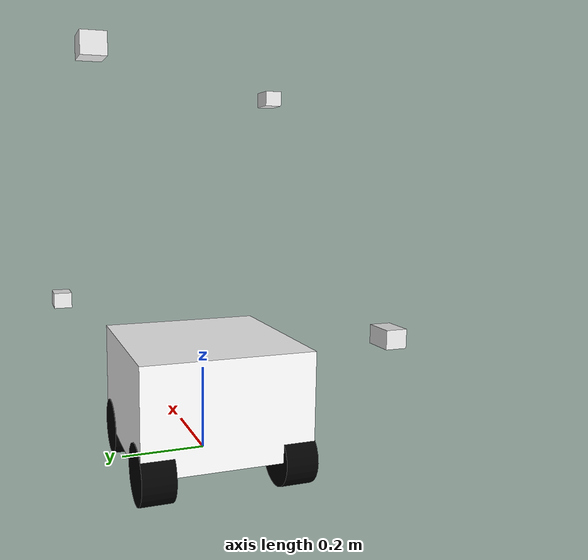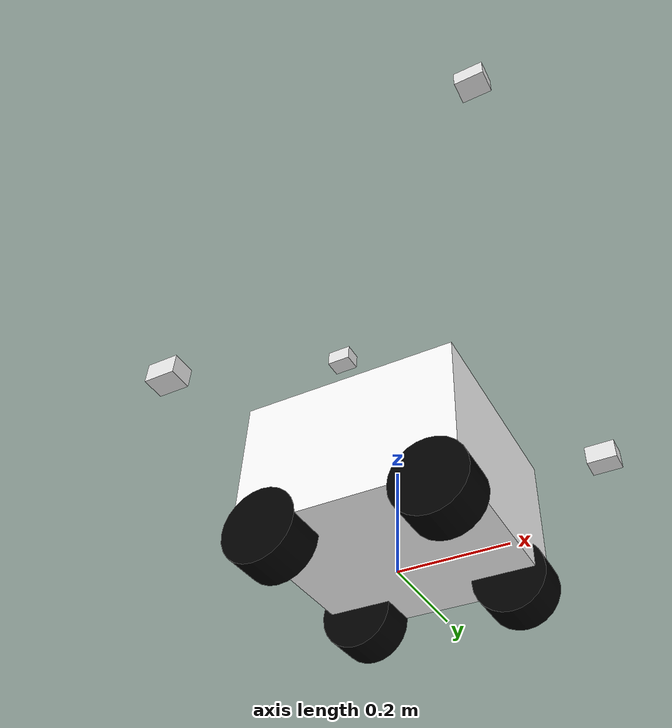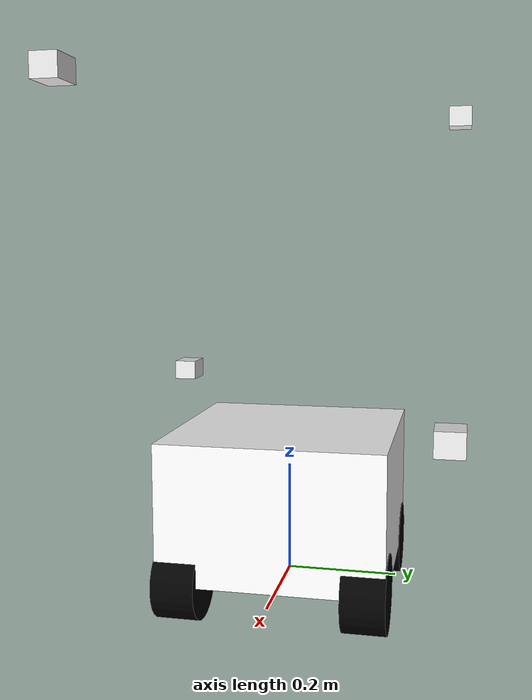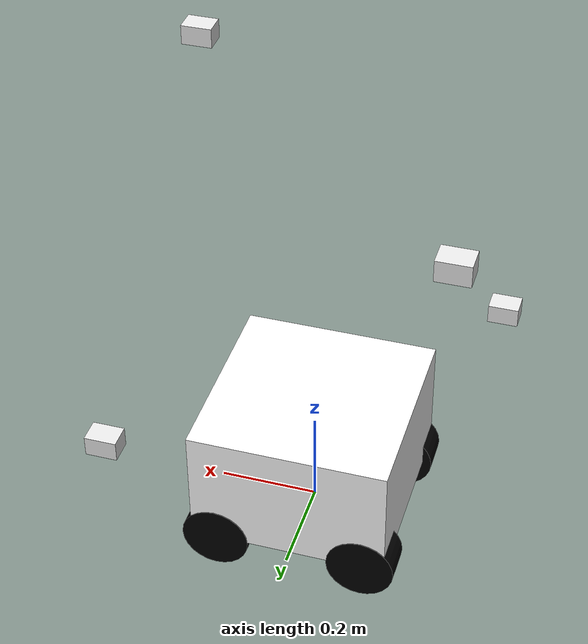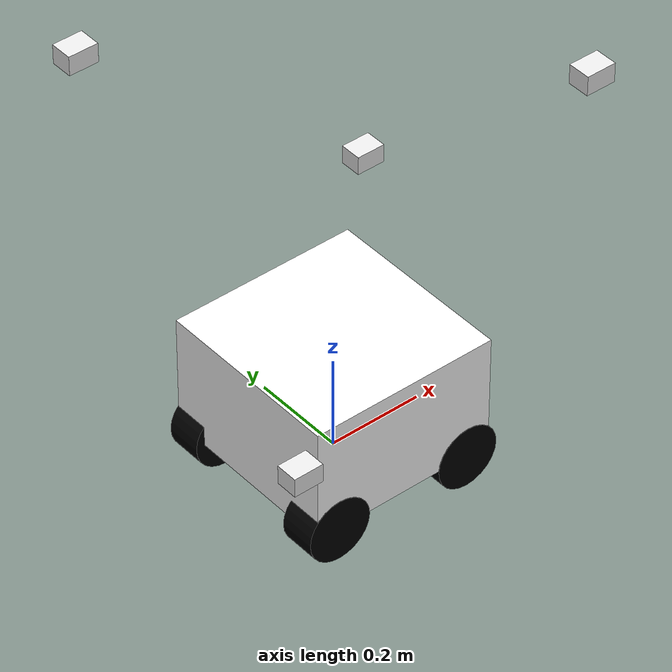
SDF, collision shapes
<sdf version='1.6'>
	<model name='r1_rover_1'>
	<link name='base_link'>
			<pose>0 0 0 0 -0 0</pose>
			<inertial>
				<pose>0 0 0 0 -0 0</pose>
				<mass>20.0</mass>
				<inertia>
					<ixx>0.37083</ixx>
					<ixy>0.0</ixy>
					<ixz>0.0</ixz>
					<iyy>0.37083</iyy>
					<iyz>0.0</iyz>
					<izz>0.53333</izz>
				</inertia>
			</inertial>
			<collision name='odom_fixed_joint_lump__base_link_collision'>
				<pose>0 0 0.15 0 -0 0</pose>
				<geometry>
					<box>
					<size>0.4 0.4 0.25</size>
					</box>
				</geometry>
				<surface>
					<contact>
						<ode/>
					</contact>
					<friction>
						<ode/>
					</friction>
				</surface>
			</collision>
			<visual name='odom_fixed_joint_lump__base_link_visual'>
				<pose>0 0 0 0 -0 0</pose>
				<geometry>
					<mesh>
						<scale>1 1 1</scale>
						<uri>model://r1_rover_1/meshes/chassis_link.STL</uri>
					</mesh>
				</geometry>
				<material>
					<diffuse>1.0 1.0 1.0</diffuse>
					<specular>1.0 1.0 1.0</specular>
				</material>
			</visual>
			<visual name='odom_fixed_joint_lump__top_link_visual_1'>
				<pose>0 0 0.114486 0 -0 0</pose>
				<geometry>
					<mesh>
						<scale>1 1 1</scale>
						<uri>model://r1_rover_1/meshes/top_link.STL</uri>
					</mesh>
				</geometry>
				<material>
					<diffuse>1.0 1.0 1.0</diffuse>
					<specular>1.0 1.0 1.0</specular>
				</material>
			</visual>
			<visual name='odom_fixed_joint_lump__battery_link_visual_2'>
				<pose>-0.09302 -0.000128 0.114486 0 -0 0</pose>
				<geometry>
					<mesh>
						<scale>1 1 1</scale>
						<uri>model://r1_rover_1/meshes/battery_link.STL</uri>
					</mesh>
				</geometry>
				<material>
					<diffuse>0.0 0.0 0.0</diffuse>
					<specular>0.5 0.5 0.5</specular>
				</material>
			</visual>
			<visual name='odom_fixed_joint_lump__housing_link_visual_3'>
				<pose>0.03473 0 0.114486 0 -0 0</pose>
				<geometry>
					<mesh>
						<scale>1 1 1</scale>
						<uri>model://r1_rover_1/meshes/housing_link.STL</uri>
					</mesh>
				</geometry>
				<material>
					<diffuse>0.0 0.0 0.0</diffuse>
					<specular>0.5 0.5 0.5</specular>
				</material>
			</visual>
			<visual name='odom_fixed_joint_lump__l_antenna_link_visual_4'>
				<pose>-0.1565 0.0762 0.114486 0 -0 0</pose>
				<geometry>
					<mesh>
						<scale>1 1 1</scale>
						<uri>model://r1_rover_1/meshes/antenna_link.STL</uri>
					</mesh>
				</geometry>
				<material>
					<diffuse>0.0 0.0 0.0</diffuse>
					<specular>0.5 0.5 0.5</specular>
				</material>
			</visual>
			<visual name='odom_fixed_joint_lump__r_antenna_link_visual_5'>
				<pose>-0.1565 -0.0762 0.114486 0 -0 0</pose>
				<geometry>
					<mesh>
						<scale>1 1 1</scale>
						<uri>model://r1_rover_1/meshes/antenna_link.STL</uri>
					</mesh>
				</geometry>
				<material>
					<diffuse>0.0 0.0 0.0</diffuse>
					<specular>0.5 0.5 0.5</specular>
				</material>
			</visual>
			<velocity_decay/>
			<velocity_decay/>
			<velocity_decay/>
			<velocity_decay/>
			<velocity_decay/>
			<gravity>1</gravity>
			<velocity_decay/>
			<sensor name="imu_sensor" type="imu">
				<always_on>1</always_on>
				<update_rate>250</update_rate>
				<imu>
					<angular_velocity>
						<x>
						<noise type="gaussian">
							<mean>0</mean>
							<stddev>0.0003394</stddev>
							<dynamic_bias_stddev>3.8785e-05</dynamic_bias_stddev>
							<dynamic_bias_correlation_time>1000</dynamic_bias_correlation_time>
						</noise>
						</x>
						<y>
						<noise type="gaussian">
							<mean>0</mean>
							<stddev>0.0003394</stddev>
							<dynamic_bias_stddev>3.8785e-05</dynamic_bias_stddev>
							<dynamic_bias_correlation_time>1000</dynamic_bias_correlation_time>
						</noise>
						</y>
						<z>
						<noise type="gaussian">
							<mean>0</mean>
							<stddev>0.0003394</stddev>
							<dynamic_bias_stddev>3.8785e-05</dynamic_bias_stddev>
							<dynamic_bias_correlation_time>1000</dynamic_bias_correlation_time>
						</noise>
						</z>
					</angular_velocity>
					<linear_acceleration>
						<x>
						<noise type="gaussian">
							<mean>0</mean>
							<stddev>0.004</stddev>
							<dynamic_bias_stddev>0.006</dynamic_bias_stddev>
							<dynamic_bias_correlation_time>300</dynamic_bias_correlation_time>
						</noise>
						</x>
						<y>
						<noise type="gaussian">
							<mean>0</mean>
							<stddev>0.004</stddev>
							<dynamic_bias_stddev>0.006</dynamic_bias_stddev>
							<dynamic_bias_correlation_time>300</dynamic_bias_correlation_time>
						</noise>
						</y>
						<z>
						<noise type="gaussian">
							<mean>0</mean>
							<stddev>0.004</stddev>
							<dynamic_bias_stddev>0.006</dynamic_bias_stddev>
							<dynamic_bias_correlation_time>300</dynamic_bias_correlation_time>
						</noise>
						</z>
					</linear_acceleration>
				</imu>
			</sensor>
			<sensor name="air_pressure_sensor" type="air_pressure">
				<always_on>1</always_on>
				<update_rate>50</update_rate>
				<air_pressure>
					<pressure>
						<noise type="gaussian">
							<mean>0</mean>
							<stddev>0.01</stddev>
						</noise>
					</pressure>
				</air_pressure>
			</sensor>
			<sensor name="magnetometer_sensor" type="magnetometer">
				<always_on>1</always_on>
				<update_rate>100</update_rate>
				<magnetometer>
				<!-- TODO: update to fix units and coordinate system when we move past Harmonic -->
				<!-- See https://github.com/gazebosim/gz-sim/pull/2460 -->
				<!-- 3mgauss RMS: NOTE: noise is in tesla but sensor reports data in gauss -->
				<!-- Noise modeled after IIS2MDC -->
					<x>
						<noise type="gaussian">
						<stddev>0.0001</stddev>
						</noise>
					</x>
					<y>
						<noise type="gaussian">
						<stddev>0.0001</stddev>
						</noise>
					</y>
					<z>
						<noise type="gaussian">
						<stddev>0.0001</stddev>
						</noise>
					</z>
				</magnetometer>
			</sensor>
			<sensor name="navsat_sensor" type="navsat">
				<always_on>1</always_on>
				<update_rate>30</update_rate>
			</sensor>
		</link>
		<link name='lf_wheel_link'>
			<pose>0.15 0.16317 0.0215 0 -0 0</pose>
			<inertial>
				<pose>0 0 0 1.57079632679 0 0</pose>
				<mass>0.414</mass>
				<inertia>
					<ixx>0.00068682</ixx>
					<ixy>0</ixy>
					<ixz>0</ixz>
					<iyy>0.00068682</iyy>
					<iyz>0</iyz>
					<izz>0.00097299</izz>
				</inertia>
			</inertial>
			<collision name='lf_wheel_link_collision'>
				<pose>0 0 0 1.57079632679 0 0</pose>
				<geometry>
					<cylinder>
						<radius>0.0686</radius>
						<length>0.0762</length>
					</cylinder>
				</geometry>
				<max_contacts>1</max_contacts>
				<surface>
					<friction>
						<torsional>
							<coefficient>0.25</coefficient>
							<use_patch_radius>1</use_patch_radius>
							<surface_radius>0.0686</surface_radius>
						</torsional>
						<ode>
							<mu>1.0</mu>
							<mu2>1.0</mu2>
							<fdir1>1 0 0</fdir1>
							<slip1>0.0</slip1>
							<slip2>0.0</slip2>
						</ode>
					</friction>
					<bounce>
						<restitution_coefficient>0</restitution_coefficient>
						<threshold>1e6</threshold>
					</bounce>
					<contact>
						<ode>
							<min_depth>0.001</min_depth>
							<max_vel>0.0</max_vel>
							<kp>1.0e6</kp>
							<kd>100.0</kd>
						</ode>
					</contact>
				</surface>
			</collision>
			<visual name='lf_wheel_link_visual'>
				<pose>0 0 0 0 -0 0</pose>
				<geometry>
					<mesh>
						<scale>1 1 1</scale>
						<uri>model://r1_rover_1/meshes/wheel_link.STL</uri>
					</mesh>
				</geometry>
				<material>
					<diffuse>0.0 0.0 0.0</diffuse>
					<specular>0.5 0.5 0.5</specular>
				</material>
			</visual>
			<gravity>1</gravity>
			<velocity_decay/>
		</link>
		<joint name='motor_0' type='revolute'>
			<child>lf_wheel_link</child>
			<parent>base_link</parent>
			<axis>
				<xyz>0 1 0</xyz>
				<limit>
					<lower>-1e+16</lower>
					<upper>1e+16</upper>
				</limit>
				<dynamics>
					<spring_reference>0</spring_reference>
					<spring_stiffness>0</spring_stiffness>
				</dynamics>
				<use_parent_model_frame>1</use_parent_model_frame>
			</axis>
		</joint>
		<link name='lb_wheel_link'>
			<pose>-0.15 0.16317 0.0215 0 -0 0</pose>
			<inertial>
			<pose>0 0 0 1.57079632679 0 0</pose>
			<mass>0.414</mass>
				<inertia>
					<ixx>0.00068682</ixx>
					<ixy>0</ixy>
					<ixz>0</ixz>
					<iyy>0.00068682</iyy>
					<iyz>0</iyz>
					<izz>0.00097299</izz>
				</inertia>
			</inertial>
			<collision name='lb_wheel_link_collision'>
				<pose>0 0 0 1.57079632679 0 0</pose>
				<geometry>
					<cylinder>
						<radius>0.0686</radius>
						<length>0.0762</length>
					</cylinder>
				</geometry>
				<max_contacts>1</max_contacts>
				<surface>
					<friction>
					<torsional>
						<coefficient>0.25</coefficient>
						<use_patch_radius>1</use_patch_radius>
						<surface_radius>0.0686</surface_radius>
					</torsional>
					<ode>
						<mu>1.0</mu>
						<mu2>1.0</mu2>
						<fdir1>1 0 0</fdir1>
						<slip1>0.0</slip1>
						<slip2>0.0</slip2>
					</ode>
					</friction>
					<bounce>
						<restitution_coefficient>0</restitution_coefficient>
						<threshold>1e6</threshold>
					</bounce>
					<contact>
					<ode>
						<min_depth>0.001</min_depth>
						<max_vel>0.0</max_vel>
						<kp>1.0e6</kp>
						<kd>100.0</kd>
					</ode>
					</contact>
				</surface>
			</collision>
			<visual name='lb_wheel_link_visual'>
				<pose>0 0 0 0 -0 0</pose>
					<geometry>
						<mesh>
							<scale>1 1 1</scale>
							<uri>model://r1_rover_1/meshes/wheel_link.STL</uri>
						</mesh>
					</geometry>
					<material>
						<diffuse>0.0 0.0 0.0</diffuse>
						<specular>0.5 0.5 0.5</specular>
					</material>
			</visual>
			<gravity>1</gravity>
			<velocity_decay/>
		</link>
		<joint name='motor_1' type='revolute'>
			<child>lb_wheel_link</child>
			<parent>base_link</parent>
			<axis>
				<xyz>0 1 0</xyz>
				<limit>
					<lower>-1e+16</lower>
					<upper>1e+16</upper>
				</limit>
				<dynamics>
					<spring_reference>0</spring_reference>
					<spring_stiffness>0</spring_stiffness>
				</dynamics>
				<use_parent_model_frame>1</use_parent_model_frame>
			</axis>
		</joint>
		<link name='rf_wheel_link'>
			<pose>0.15 -0.16317 0.0215 0 -0 0</pose>
			<inertial>
				<pose>0 0 0 1.57079632679 0 0</pose>
				<mass>0.414</mass>
				<inertia>
					<ixx>0.00068682</ixx>
					<ixy>0</ixy>
					<ixz>0</ixz>
					<iyy>0.00068682</iyy>
					<iyz>0</iyz>
					<izz>0.00097299</izz>
				</inertia>
			</inertial>
			<collision name='rf_wheel_link_collision'>
				<pose>0 0 0 1.57079632679 0 0</pose>
				<geometry>
					<cylinder>
						<radius>0.0686</radius>
						<length>0.0762</length>
					</cylinder>
				</geometry>
				<max_contacts>1</max_contacts>
				<surface>
					<friction>
					<torsional>
					<coefficient>0.25</coefficient>
					<use_patch_radius>1</use_patch_radius>
					<surface_radius>0.0686</surface_radius>
					</torsional>
					<ode>
					<mu>1.0</mu>
					<mu2>1.0</mu2>
					<fdir1>1 0 0</fdir1>
					<slip1>0.0</slip1>
					<slip2>0.0</slip2>
					</ode>
					</friction>
					<bounce>
					<restitution_coefficient>0</restitution_coefficient>
					<threshold>1e6</threshold>
					</bounce>
					<contact>
					<ode>
					<min_depth>0.001</min_depth>
					<max_vel>0.0</max_vel>
					<kp>1.0e6</kp>
					<kd>100.0</kd>
					</ode>
					</contact>
				</surface>
			</collision>
			<visual name='rf_wheel_link_visual'>
				<pose>0 0 0 0 -0 0</pose>
				<geometry>
					<mesh>
						<scale>1 1 1</scale>
						<uri>model://r1_rover_1/meshes/wheel_link.STL</uri>
					</mesh>
				</geometry>
				<material>
					<diffuse>0.0 0.0 0.0</diffuse>
					<specular>0.5 0.5 0.5</specular>
				</material>
			</visual>
			<gravity>1</gravity>
			<velocity_decay/>
		</link>
		<joint name='motor_2' type='revolute'>
			<child>rf_wheel_link</child>
			<parent>base_link</parent>
			<axis>
				<xyz>0 -1 0</xyz>
				<limit>
					<lower>-1e+16</lower>
					<upper>1e+16</upper>
				</limit>
				<dynamics>
					<spring_reference>0</spring_reference>
					<spring_stiffness>0</spring_stiffness>
				</dynamics>
				<use_parent_model_frame>1</use_parent_model_frame>
			</axis>
		</joint>
		<link name='rb_wheel_link'>
			<pose>-0.15 -0.16317 0.0215 0 -0 0</pose>
			<inertial>
				<pose>0 0 0 1.57079632679 0 0</pose>
				<mass>0.414</mass>
				<inertia>
					<ixx>0.00068682</ixx>
					<ixy>0</ixy>
					<ixz>0</ixz>
					<iyy>0.00068682</iyy>
					<iyz>0</iyz>
					<izz>0.00097299</izz>
				</inertia>
			</inertial>
			<collision name='rb_wheel_link_collision'>
				<pose>0 0 0 1.57079632679 0 0</pose>
				<geometry>
					<cylinder>
						<radius>0.0686</radius>
						<length>0.0762</length>
					</cylinder>
				</geometry>
				<max_contacts>1</max_contacts>
				<surface>
					<friction>
						<torsional>
							<coefficient>0.25</coefficient>
							<use_patch_radius>1</use_patch_radius>
							<surface_radius>0.0686</surface_radius>
						</torsional>
						<ode>
							<mu>1.0</mu>
							<mu2>1.0</mu2>
							<fdir1>1 0 0</fdir1>
							<slip1>0.0</slip1>
							<slip2>0.0</slip2>
						</ode>
					</friction>
					<bounce>
						<restitution_coefficient>0</restitution_coefficient>
						<threshold>1e6</threshold>
					</bounce>
					<contact>
						<ode>
							<min_depth>0.001</min_depth>
							<kp>1e8</kp>
						</ode>
					</contact>
				</surface>
			</collision>
			<visual name='rb_wheel_link_visual'>
				<pose>0 0 0 0 -0 0</pose>
				<geometry>
					<mesh>
						<scale>1 1 1</scale>
						<uri>model://r1_rover_1/meshes/wheel_link.STL</uri>
					</mesh>
				</geometry>
				<material>
					<diffuse>0.0 0.0 0.0</diffuse>
					<specular>0.5 0.5 0.5</specular>
				</material>
			</visual>
			<gravity>1</gravity>
			<velocity_decay/>
		</link>

		<joint name='motor_3' type='revolute'>
			<child>rb_wheel_link</child>
			<parent>base_link</parent>
			<axis>
				<xyz>0 -1 0</xyz>
				<limit>
					<lower>-1e+16</lower>
					<upper>1e+16</upper>
				</limit>
				<dynamics>
					<spring_reference>0</spring_reference>
					<spring_stiffness>0</spring_stiffness>
				</dynamics>
				<use_parent_model_frame>1</use_parent_model_frame>
			</axis>
		</joint>

		<link name="uwb_anchor_5">
			<pose>-0.32 0.3 0.875 0 0 0</pose> <!-- Anchor position relative to base_link -->
			<inertial>
				<mass>0.0001</mass> <!-- Very small mass -->
				<inertia>
					<ixx>1e-6</ixx>
					<iyy>1e-6</iyy>
					<izz>1e-6</izz>
					<ixy>0</ixy>
					<ixz>0</ixz>
					<iyz>0</iyz>
				</inertia>
			</inertial>
			<visual name="uwb_anchor_5_mesh_vis">
				<pose>0 0 0 0 0 0</pose>
				<geometry>
					<mesh>
						<uri>model://r1_rover_1/meshes/uwb_anchor_eliko.stl</uri>
						<scale>1 1 1</scale>
					</mesh>
				</geometry>
				<material>
					<ambient>0.92 0.92 0.92 1</ambient>
					<diffuse>0.92 0.92 0.92 1</diffuse>
				</material>
			</visual>
			<visual name="uwb_anchor_5_bar_vis">
				<pose>0.16 -0.15 -0.4375 2.8113 0.333059 1.57928</pose>
				<geometry>
					<cylinder>
						<radius>0.004</radius>
						<length>0.978788</length>
					</cylinder>
				</geometry>
				<material>
					<ambient>0.28 0.28 0.30 1</ambient>
					<diffuse>0.28 0.28 0.30 1</diffuse>
				</material>
			</visual>
			<collision name="uwb_anchor_5_collision">
				<pose>0 0 0 0 0 0</pose>
				<geometry>
					<box>
						<size>0.062 0.046 0.04</size>
					</box>
				</geometry>
			</collision>
		</link>

		<joint name="uwb_anchor_5_joint" type="fixed">
			<parent>base_link</parent>
			<child>uwb_anchor_5</child>
		</joint>

		<link name="uwb_anchor_6">
			<pose>0.32 -0.3 0.875 0 0 0</pose> <!-- Anchor position relative to base_link -->
			<inertial>
				<mass>0.0001</mass> <!-- Very small mass -->
				<inertia>
					<ixx>1e-6</ixx>
					<iyy>1e-6</iyy>
					<izz>1e-6</izz>
					<ixy>0</ixy>
					<ixz>0</ixz>
					<iyz>0</iyz>
				</inertia>
			</inertial>
			<visual name="uwb_anchor_6_mesh_vis">
				<pose>0 0 0 0 0 0</pose>
				<geometry>
					<mesh>
						<uri>model://r1_rover_1/meshes/uwb_anchor_eliko.stl</uri>
						<scale>1 1 1</scale>
					</mesh>
				</geometry>
				<material>
					<ambient>0.92 0.92 0.92 1</ambient>
					<diffuse>0.92 0.92 0.92 1</diffuse>
				</material>
			</visual>
			<visual name="uwb_anchor_6_bar_vis">
				<pose>-0.16 0.15 -0.4375 -2.8113 -0.333059 1.57928</pose>
				<geometry>
					<cylinder>
						<radius>0.004</radius>
						<length>0.978788</length>
					</cylinder>
				</geometry>
				<material>
					<ambient>0.28 0.28 0.30 1</ambient>
					<diffuse>0.28 0.28 0.30 1</diffuse>
				</material>
			</visual>
			<collision name="uwb_anchor_6_collision">
				<pose>0 0 0 0 0 0</pose>
				<geometry>
					<box>
						<size>0.062 0.046 0.04</size>
					</box>
				</geometry>
			</collision>
		</link>

		<joint name="uwb_anchor_6_joint" type="fixed">
			<parent>base_link</parent>
			<child>uwb_anchor_6</child>
		</joint>

		<link name="uwb_anchor_7">
			<pose>0.32 0.3 0.33 0 0 0</pose> <!-- Anchor position relative to base_link -->
			<inertial>
				<mass>0.0001</mass> <!-- Very small mass -->
				<inertia>
					<ixx>1e-6</ixx>
					<iyy>1e-6</iyy>
					<izz>1e-6</izz>
					<ixy>0</ixy>
					<ixz>0</ixz>
					<iyz>0</iyz>
				</inertia>
			</inertial>
			<visual name="uwb_anchor_7_mesh_vis">
				<pose>0 0 0 0 0 0</pose>
				<geometry>
					<mesh>
						<uri>model://r1_rover_1/meshes/uwb_anchor_eliko.stl</uri>
						<scale>1 1 1</scale>
					</mesh>
				</geometry>
				<material>
					<ambient>0.92 0.92 0.92 1</ambient>
					<diffuse>0.92 0.92 0.92 1</diffuse>
				</material>
			</visual>
			<visual name="uwb_anchor_7_bar_vis">
				<pose>-0.16 -0.15 -0.165 2.40378 -0.622386 -1.38786</pose>
				<geometry>
					<cylinder>
						<radius>0.004</radius>
						<length>0.548908</length>
					</cylinder>
				</geometry>
				<material>
					<ambient>0.28 0.28 0.30 1</ambient>
					<diffuse>0.28 0.28 0.30 1</diffuse>
				</material>
			</visual>
			<collision name="uwb_anchor_7_collision">
				<pose>0 0 0 0 0 0</pose>
				<geometry>
					<box>
						<size>0.062 0.046 0.04</size>
					</box>
				</geometry>
			</collision>
		</link>

		<joint name="uwb_anchor_7_joint" type="fixed">
			<parent>base_link</parent>
			<child>uwb_anchor_7</child>
		</joint>

		<link name="uwb_anchor_8">
			<pose>-0.32 -0.3 0.33 0 0 0</pose> <!-- Anchor position relative to base_link -->
			<inertial>
				<mass>0.0001</mass> <!-- Very small mass -->
				<inertia>
					<ixx>1e-6</ixx>
					<iyy>1e-6</iyy>
					<izz>1e-6</izz>
					<ixy>0</ixy>
					<ixz>0</ixz>
					<iyz>0</iyz>
				</inertia>
			</inertial>
			<visual name="uwb_anchor_8_mesh_vis">
				<pose>0 0 0 0 0 0</pose>
				<geometry>
					<mesh>
						<uri>model://r1_rover_1/meshes/uwb_anchor_eliko.stl</uri>
						<scale>1 1 1</scale>
					</mesh>
				</geometry>
				<material>
					<ambient>0.92 0.92 0.92 1</ambient>
					<diffuse>0.92 0.92 0.92 1</diffuse>
				</material>
			</visual>
			<visual name="uwb_anchor_8_bar_vis">
				<pose>0.16 0.15 -0.165 -2.40378 0.622386 -1.38786</pose>
				<geometry>
					<cylinder>
						<radius>0.004</radius>
						<length>0.548908</length>
					</cylinder>
				</geometry>
				<material>
					<ambient>0.28 0.28 0.30 1</ambient>
					<diffuse>0.28 0.28 0.30 1</diffuse>
				</material>
			</visual>
			<collision name="uwb_anchor_8_collision">
				<pose>0 0 0 0 0 0</pose>
				<geometry>
					<box>
						<size>0.062 0.046 0.04</size>
					</box>
				</geometry>
			</collision>
		</link>

		<joint name="uwb_anchor_8_joint" type="fixed">
			<parent>base_link</parent>
			<child>uwb_anchor_8</child>
		</joint>

		<static>0</static>
		<plugin filename="gz-sim-joint-controller-system" name="gz::sim::systems::JointController">
			<joint_name>motor_0</joint_name>
			<sub_topic>command/motor_speed</sub_topic>
			<use_actuator_msg>true</use_actuator_msg>
			<actuator_number>1</actuator_number>
			<p_gain>10.0</p_gain>
		</plugin>
		<plugin filename="gz-sim-joint-controller-system" name="gz::sim::systems::JointController">
			<joint_name>motor_1</joint_name>
			<sub_topic>command/motor_speed</sub_topic>
			<use_actuator_msg>true</use_actuator_msg>
			<actuator_number>1</actuator_number>
			<p_gain>10.0</p_gain>
		</plugin>
		<plugin filename="gz-sim-joint-controller-system" name="gz::sim::systems::JointController">
			<joint_name>motor_2</joint_name>
			<sub_topic>command/motor_speed</sub_topic>
			<use_actuator_msg>true</use_actuator_msg>
			<actuator_number>0</actuator_number>
			<p_gain>10.0</p_gain>
		</plugin>
		<plugin filename="gz-sim-joint-controller-system" name="gz::sim::systems::JointController">
			<joint_name>motor_3</joint_name>
			<sub_topic>command/motor_speed</sub_topic>
			<use_actuator_msg>true</use_actuator_msg>
			<actuator_number>0</actuator_number>
			<p_gain>10.0</p_gain>
		</plugin>
		<plugin
			filename="gz-sim-joint-state-publisher-system"
			name="gz::sim::systems::JointStatePublisher">
			<joint_name>motor_0</joint_name>
			<joint_name>motor_1</joint_name>
			<joint_name>motor_2</joint_name>
			<joint_name>motor_3</joint_name>
		</plugin>
	</model>
</sdf>
